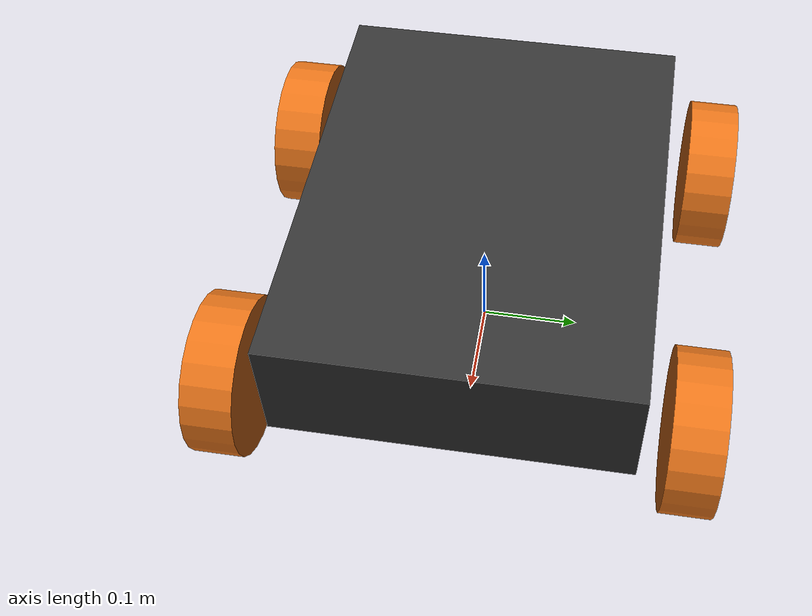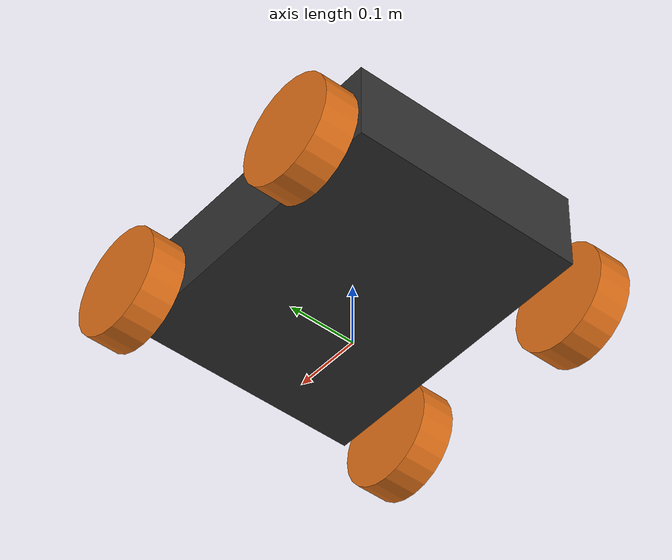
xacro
<?xml version="1.0"?>
<robot name="skid_steer_rover" xmlns:xacro="http://www.ros.org/wiki/xacro">

  <!-- Dimensions -->
  <xacro:property name="wheel_radius" value="0.08"/>
  <xacro:property name="wheel_width" value="0.05"/>
  <xacro:property name="track_width" value="0.45"/>
  <xacro:property name="wheelbase" value="0.34"/>

  <!-- Chassis dimensions & mass -->
  <xacro:property name="chassis_length" value="0.45"/>
  <xacro:property name="chassis_width" value="0.35"/>
  <xacro:property name="chassis_height" value="0.12"/>
  <xacro:property name="chassis_mass" value="10.0"/>
  <xacro:property name="wheel_mass" value="1.5"/>

  <!-- Base Footprint -->
  <link name="base_footprint"/>

  <joint name="base_footprint_joint" type="fixed">
    <parent link="base_footprint"/>
    <child link="base_link"/>
    <origin xyz="0 0 ${wheel_radius}" rpy="0 0 0"/>
  </joint>

  <!-- Base Link / Chassis -->
  <link name="base_link">
    <visual>
      <origin xyz="0 0 ${chassis_height/2}" rpy="0 0 0"/>
      <geometry>
        <box size="${chassis_length} ${chassis_width} ${chassis_height}"/>
      </geometry>
      <material name="dark_gray">
        <color rgba="0.2 0.2 0.2 1.0"/>
      </material>
    </visual>
    <collision>
      <origin xyz="0 0 ${chassis_height/2}" rpy="0 0 0"/>
      <geometry>
        <box size="${chassis_length} ${chassis_width} ${chassis_height}"/>
      </geometry>
    </collision>
    <inertial>
      <origin xyz="0 0 ${chassis_height/2}" rpy="0 0 0"/>
      <mass value="${chassis_mass}"/>
      <inertia ixx="${(1/12) * chassis_mass * (chassis_width*chassis_width + chassis_height*chassis_height)}"
               ixy="0.0" ixz="0.0"
               iyy="${(1/12) * chassis_mass * (chassis_length*chassis_length + chassis_height*chassis_height)}"
               iyz="0.0"
               izz="${(1/12) * chassis_mass * (chassis_length*chassis_length + chassis_width*chassis_width)}"/>
    </inertial>
  </link>

  <!-- Reusable Wheel Macro -->
  <xacro:macro name="wheel" params="prefix x_reflect y_reflect">
    <link name="${prefix}_wheel_link">
      <visual>
        <origin xyz="0 0 0" rpy="${pi/2} 0 0"/>
        <geometry>
          <cylinder radius="${wheel_radius}" length="${wheel_width}"/>
        </geometry>
        <material name="orange">
          <color rgba="0.9 0.45 0.1 1.0"/>
        </material>
      </visual>
      <collision>
        <origin xyz="0 0 0" rpy="${pi/2} 0 0"/>
        <geometry>
          <cylinder radius="${wheel_radius}" length="${wheel_width}"/>
        </geometry>
        <surface>
          <friction>
            <ode>
              <mu>1.0</mu>
              <mu2>1.0</mu2>
            </ode>
          </friction>
        </surface>
      </collision>
      <inertial>
        <origin xyz="0 0 0" rpy="${pi/2} 0 0"/>
        <mass value="${wheel_mass}"/>
        <inertia ixx="${(1/12) * wheel_mass * (3*wheel_radius*wheel_radius + wheel_width*wheel_width)}"
                 ixy="0.0" ixz="0.0"
                 iyy="${(1/12) * wheel_mass * (3*wheel_radius*wheel_radius + wheel_width*wheel_width)}"
                 iyz="0.0"
                 izz="${0.5 * wheel_mass * wheel_radius * wheel_radius}"/>
      </inertial>
    </link>

    <joint name="${prefix}_wheel_joint" type="continuous">
      <parent link="base_link"/>
      <child link="${prefix}_wheel_link"/>
      <origin xyz="${x_reflect * wheelbase/2} ${y_reflect * track_width/2} 0" rpy="0 0 0"/>
      <axis xyz="0 1 0"/>
    </joint>
  </xacro:macro>

  <!-- Instantiate Wheels -->
  <xacro:wheel prefix="front_left"  x_reflect="1"  y_reflect="1"/>
  <xacro:wheel prefix="front_right" x_reflect="1"  y_reflect="-1"/>
  <xacro:wheel prefix="rear_left"   x_reflect="-1" y_reflect="1"/>
  <xacro:wheel prefix="rear_right"  x_reflect="-1" y_reflect="-1"/>

  <!-- ==================== IGNITION FORTRESS PLUGINS ==================== -->
  <gazebo>
    <!-- 1. Diff Drive Controller for 4 Wheels -->
    <plugin filename="ignition-gazebo-diff-drive-system" name="ignition::gazebo::systems::DiffDrive">
      <left_joint>front_left_wheel_joint</left_joint>
      <left_joint>rear_left_wheel_joint</left_joint>
      <right_joint>front_right_wheel_joint</right_joint>
      <right_joint>rear_right_wheel_joint</right_joint>

      <wheel_separation>${track_width}</wheel_separation>
      <wheel_radius>${wheel_radius}</wheel_radius>

      <topic>/cmd_vel</topic>
      <odom_publish_frequency>50</odom_publish_frequency>
      <frame_id>odom</frame_id>
      <child_frame_id>base_footprint</child_frame_id>
    </plugin>

    <plugin filename="ignition-gazebo-joint-state-publisher-system" name="ignition::gazebo::systems::JointStatePublisher">
      <joint_name>front_left_wheel_joint</joint_name>
      <joint_name>front_right_wheel_joint</joint_name>
      <joint_name>rear_left_wheel_joint</joint_name>
      <joint_name>rear_right_wheel_joint</joint_name>
    </plugin>

    <!-- 3. Ground Truth Odometry Publisher (Simulator absolute pose) -->
    <plugin filename="ignition-gazebo-odometry-publisher-system" name="ignition::gazebo::systems::OdometryPublisher">
      <odom_frame>world</odom_frame>
      <robot_base_frame>base_footprint</robot_base_frame>
      <odom_topic>/model/skid_steer_rover/ground_truth</odom_topic>
      <odom_publish_frequency>50.0</odom_publish_frequency>
    </plugin>
  </gazebo>

</robot>
